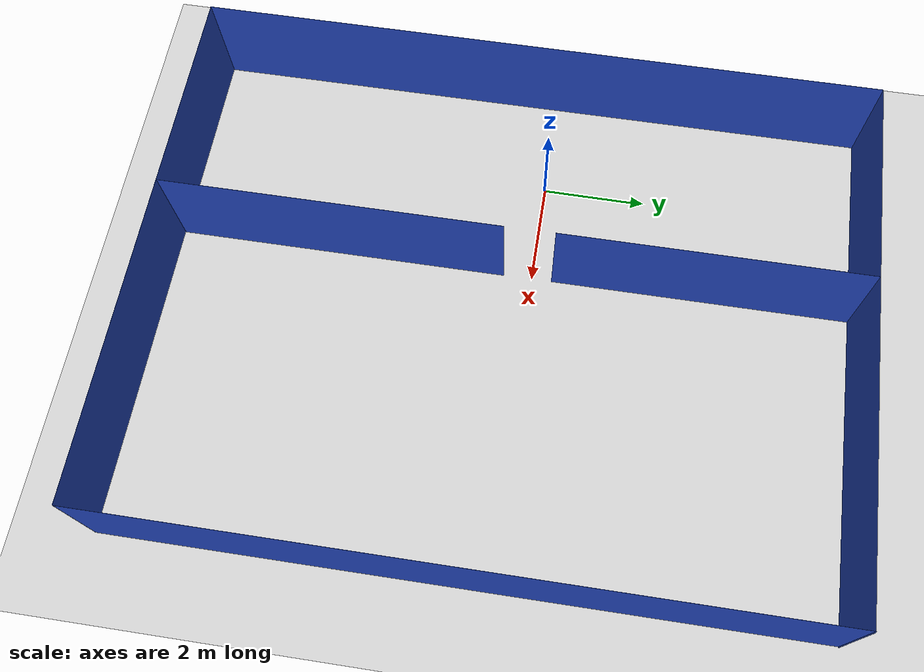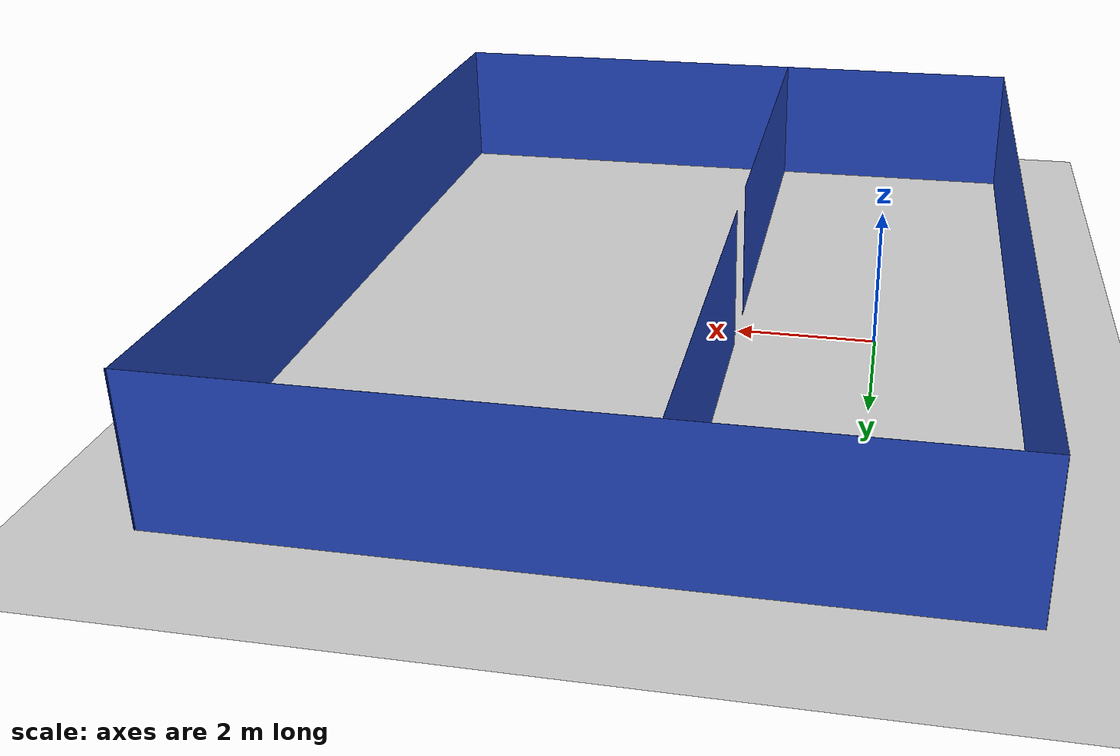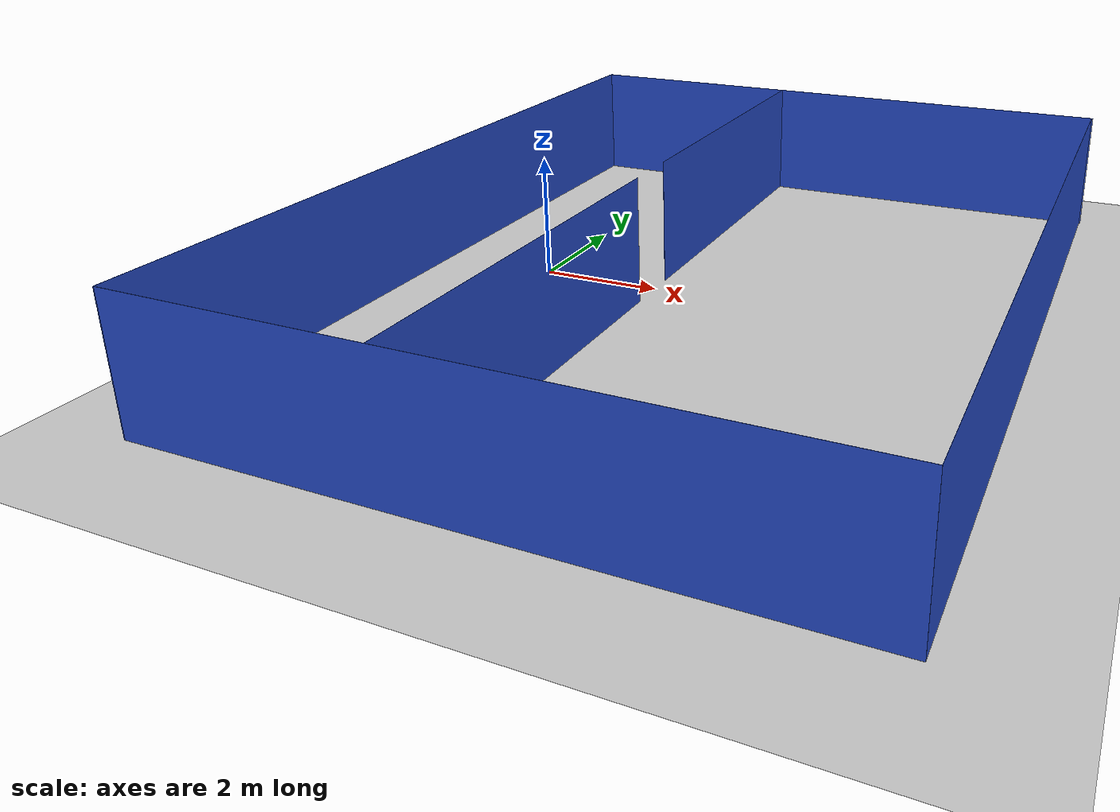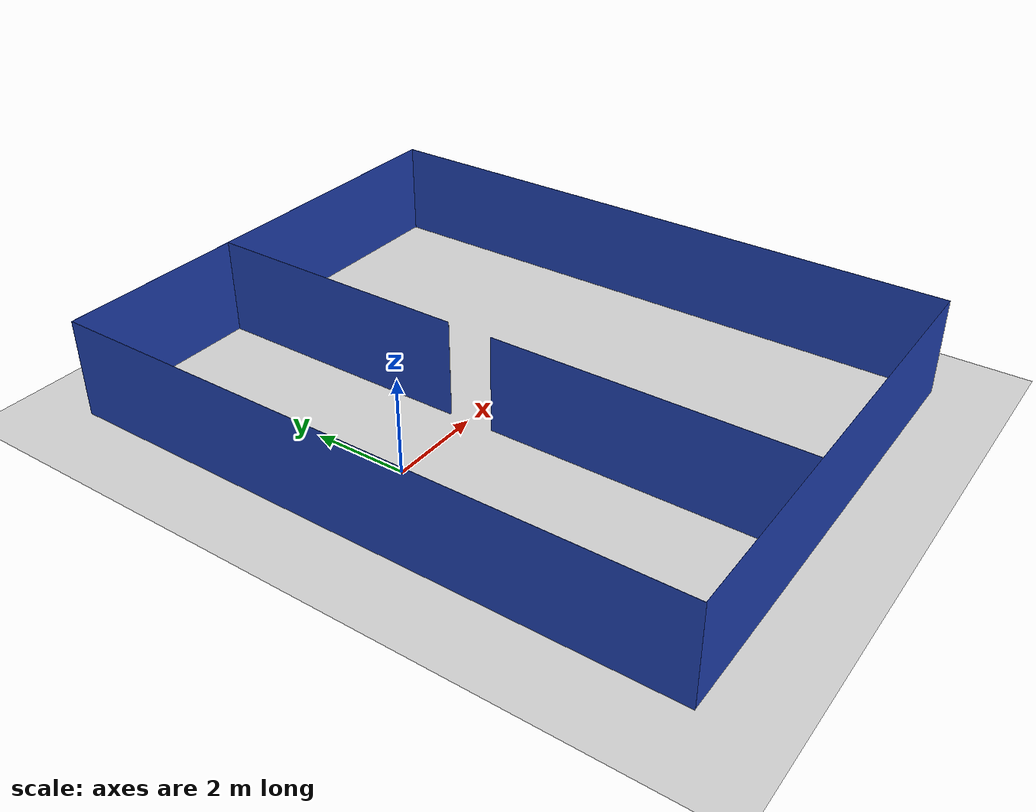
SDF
<sdf version="1.6">
 <world name="default">
  <light name="sun" type="directional">
   <pose>0 0 10 0 -0 0</pose>
   <diffuse>0.8 0.8 0.8 1</diffuse>
   <specular>0.2 0.2 0.2 1</specular>
   <attenuation>
    <range>1000</range>
    <constant>0.9</constant>
    <linear>0.01</linear>
    <quadratic>0.001</quadratic>
   </attenuation>
   <direction>-0.5 0.1 -0.9</direction>
  </light>
  <model name="ground_plane">
   <static>1</static>
   <link name="link">
    <collision name="collision">
     <geometry><plane><normal>0 0 1</normal><size>100 100</size></plane></geometry>
     <surface><friction><ode><mu>100</mu><mu2>50</mu2></ode></friction></surface>
    </collision>
    <visual name="visual">
     <cast_shadows>0</cast_shadows>
     <geometry><plane><normal>0 0 1</normal><size>100 100</size></plane></geometry>
     <material>
      <script><uri>file://media/materials/scripts/gazebo.material</uri><name>Gazebo/Grey</name></script>
     </material>
    </visual>
   </link>
  </model>
  <gravity>0 0 -9.8</gravity>
  <magnetic_field>6e-06 2.3e-05 -4.2e-05</magnetic_field>
  <atmosphere type="adiabatic"/>
  <physics name="default_physics" default="0" type="ode">
   <max_step_size>0.001</max_step_size>
   <real_time_factor>1</real_time_factor>
   <real_time_update_rate>1000</real_time_update_rate>
  </physics>
  <scene><ambient>0.4 0.4 0.4 1</ambient><background>0.7 0.7 0.7 1</background><shadows>1</shadows></scene>
  <audio><device>default</device></audio>
  <spherical_coordinates>
   <surface_model>EARTH_WGS84</surface_model>
   <latitude_deg>0</latitude_deg>
   <longitude_deg>0</longitude_deg>
   <elevation>0</elevation>
   <heading_deg>0</heading_deg>
  </spherical_coordinates>
  <model name="apartment_wall_collision_new_with_collision">
   <link name="link">
    <inertial>
     <mass>50</mass>
     <inertia><ixx>1</ixx><ixy>0</ixy><ixz>0</ixz><iyy>1</iyy><iyz>0</iyz><izz>1</izz></inertia>
    </inertial>
    <velocity_decay><linear>0</linear><angular>0</angular></velocity_decay>
    <visual name="ModelPreview_1::link::visual_6">
     <pose>3.97 10.292 1.04 0 -0 1.57</pose>
     <geometry><box><size>5.78 0.002 2.08</size></box></geometry>
     <material>
      <script>
       <uri>model://base_materials/color/scripts</uri>
       <name>hsr_color/cornflowerblue_transparency1</name>
      </script>
      <shader type="pixel"><normal_map>__default__</normal_map></shader>
      <ambient>0.392 0.584 0.929 1</ambient>
      <diffuse>0.196 0.292 0.465 1</diffuse>
      <specular>0 0 0 1</specular>
      <emissive>0 0 0 1</emissive>
     </material>
    </visual>
    <visual name="ModelPreview_1::link::visual_7">
     <pose>3.97 3.23 1.04 0 -0 1.57</pose>
     <geometry><box><size>6.45 0.002 2.08</size></box></geometry>
     <material>
      <script>
       <uri>model://base_materials/color/scripts</uri>
       <name>hsr_color/cornflowerblue_transparency1</name>
      </script>
      <shader type="pixel"><normal_map>__default__</normal_map></shader>
      <ambient>0.392 0.584 0.929 1</ambient>
      <diffuse>0.196 0.292 0.465 1</diffuse>
      <specular>0 0 0 1</specular>
      <emissive>0 0 0 1</emissive>
     </material>
    </visual>
    <visual name="wall_x00y00_x00y15">
     <pose>-0.002 6.59 1.04 0 -0 0</pose>
     <geometry><box><size>0.002 13.2 2.08</size></box></geometry>
     <material>
      <script>
       <uri>model://base_materials/color/scripts</uri>
       <name>hsr_color/cornflowerblue_transparency1</name>
      </script>
      <shader type="pixel"><normal_map>__default__</normal_map></shader>
      <ambient>0.392 0.584 0.929 1</ambient>
      <diffuse>0.196 0.292 0.465 1</diffuse>
      <specular>0 0 0 1</specular>
      <emissive>0 0 0 1</emissive>
     </material>
    </visual>
    <visual name="wall_x00y00_x13y00">
     <pose>5.0375 -0.002 1.04 0 -0 0</pose>
     <geometry><box><size>10.08 0.002 2.08</size></box></geometry>
     <material>
      <script>
       <uri>model://base_materials/color/scripts</uri>
       <name>hsr_color/cornflowerblue_transparency1</name>
      </script>
      <shader type="pixel"><normal_map>__default__</normal_map></shader>
      <ambient>0.392 0.584 0.929 1</ambient>
      <diffuse>0.196 0.292 0.465 1</diffuse>
      <specular>0 0 0 1</specular>
      <emissive>0 0 0 1</emissive>
     </material>
    </visual>
    <visual name="wall_x13y00_x13y12">
     <pose>10.077 6.6 1.04 0 -0 0</pose>
     <geometry><box><size>0.002 13.2 2.08</size></box></geometry>
     <material>
      <script>
       <uri>model://base_materials/color/scripts</uri>
       <name>hsr_color/cornflowerblue_transparency1</name>
      </script>
      <shader type="pixel"><normal_map>__default__</normal_map></shader>
      <ambient>0.392 0.584 0.929 1</ambient>
      <diffuse>0.196 0.292 0.465 1</diffuse>
      <specular>0 0 0 1</specular>
      <emissive>0 0 0 1</emissive>
     </material>
    </visual>
    <visual name="wall_x03y16_x13y16">
     <pose>5.05 13.182 1.04 0 -0 0</pose>
     <geometry><box><size>10.1 0.002 2.08</size></box></geometry>
     <material>
      <script>
       <uri>model://base_materials/color/scripts</uri>
       <name>hsr_color/cornflowerblue_transparency1</name>
      </script>
      <shader type="pixel"><normal_map>__default__</normal_map></shader>
      <ambient>0.392 0.584 0.929 1</ambient>
      <diffuse>0.196 0.292 0.465 1</diffuse>
      <specular>0 0 0 1</specular>
      <emissive>0 0 0 1</emissive>
     </material>
    </visual>
    <collision name="collision_7">
     <pose>3.97 3.23 1.04 0 -0 1.57</pose>
     <geometry><box><size>6.45 0.002 2.08</size></box></geometry>
     <surface>
      <friction>
       <ode><mu>1</mu><mu2>1</mu2><fdir1>0 0 0</fdir1><slip1>0</slip1><slip2>0</slip2></ode>
       <torsional>
        <coefficient>1</coefficient>
        <patch_radius>0</patch_radius>
        <surface_radius>0</surface_radius>
        <use_patch_radius>1</use_patch_radius>
        <ode><slip>0</slip></ode>
       </torsional>
      </friction>
      <bounce><restitution_coefficient>0</restitution_coefficient><threshold>1e+06</threshold></bounce>
      <contact>
       <collide_without_contact>0</collide_without_contact>
       <collide_without_contact_bitmask>1</collide_without_contact_bitmask>
       <collide_bitmask>1</collide_bitmask>
       <ode>
        <soft_cfm>0</soft_cfm>
        <soft_erp>0.2</soft_erp>
        <kp>1e+13</kp>
        <kd>1</kd>
        <max_vel>0.01</max_vel>
        <min_depth>0</min_depth>
       </ode>
       <bullet>
        <split_impulse>1</split_impulse>
        <split_impulse_penetration_threshold>-0.01</split_impulse_penetration_threshold>
        <soft_cfm>0</soft_cfm>
        <soft_erp>0.2</soft_erp>
        <kp>1e+13</kp>
        <kd>1</kd>
       </bullet>
      </contact>
     </surface>
    </collision>
    <collision name="collision_6">
     <pose>4 10.292 1.04 0 -0 1.57</pose>
     <geometry><box><size>5.78 0.002 2.08</size></box></geometry>
     <surface>
      <friction>
       <ode><mu>1</mu><mu2>1</mu2><fdir1>0 0 0</fdir1><slip1>0</slip1><slip2>0</slip2></ode>
       <torsional>
        <coefficient>1</coefficient>
        <patch_radius>0</patch_radius>
        <surface_radius>0</surface_radius>
        <use_patch_radius>1</use_patch_radius>
        <ode><slip>0</slip></ode>
       </torsional>
      </friction>
      <bounce><restitution_coefficient>0</restitution_coefficient><threshold>1e+06</threshold></bounce>
      <contact>
       <collide_without_contact>0</collide_without_contact>
       <collide_without_contact_bitmask>1</collide_without_contact_bitmask>
       <collide_bitmask>1</collide_bitmask>
       <ode>
        <soft_cfm>0</soft_cfm>
        <soft_erp>0.2</soft_erp>
        <kp>1e+13</kp>
        <kd>1</kd>
        <max_vel>0.01</max_vel>
        <min_depth>0</min_depth>
       </ode>
       <bullet>
        <split_impulse>1</split_impulse>
        <split_impulse_penetration_threshold>-0.01</split_impulse_penetration_threshold>
        <soft_cfm>0</soft_cfm>
        <soft_erp>0.2</soft_erp>
        <kp>1e+13</kp>
        <kd>1</kd>
       </bullet>
      </contact>
     </surface>
    </collision>
    <collision name="wall_x00y00_x00y15">
     <pose>-0.002 6.59 1.04 0 -0 0</pose>
     <geometry><box><size>0.002 13.2 2.08</size></box></geometry>
     <surface>
      <friction>
       <ode><mu>1</mu><mu2>1</mu2><fdir1>0 0 0</fdir1><slip1>0</slip1><slip2>0</slip2></ode>
       <torsional>
        <coefficient>1</coefficient>
        <patch_radius>0</patch_radius>
        <surface_radius>0</surface_radius>
        <use_patch_radius>1</use_patch_radius>
        <ode><slip>0</slip></ode>
       </torsional>
      </friction>
      <bounce><restitution_coefficient>0</restitution_coefficient><threshold>1e+06</threshold></bounce>
      <contact>
       <collide_without_contact>0</collide_without_contact>
       <collide_without_contact_bitmask>1</collide_without_contact_bitmask>
       <collide_bitmask>1</collide_bitmask>
       <ode>
        <soft_cfm>0</soft_cfm>
        <soft_erp>0.2</soft_erp>
        <kp>1e+13</kp>
        <kd>1</kd>
        <max_vel>0.01</max_vel>
        <min_depth>0</min_depth>
       </ode>
       <bullet>
        <split_impulse>1</split_impulse>
        <split_impulse_penetration_threshold>-0.01</split_impulse_penetration_threshold>
        <soft_cfm>0</soft_cfm>
        <soft_erp>0.2</soft_erp>
        <kp>1e+13</kp>
        <kd>1</kd>
       </bullet>
      </contact>
     </surface>
    </collision>
    <collision name="wall_x00y00_x13y00">
     <pose>5.0375 -0.002 1.04 0 -0 0</pose>
     <geometry><box><size>10.08 0.002 2.08</size></box></geometry>
     <surface>
      <friction>
       <ode><mu>1</mu><mu2>1</mu2><fdir1>0 0 0</fdir1><slip1>0</slip1><slip2>0</slip2></ode>
       <torsional>
        <coefficient>1</coefficient>
        <patch_radius>0</patch_radius>
        <surface_radius>0</surface_radius>
        <use_patch_radius>1</use_patch_radius>
        <ode><slip>0</slip></ode>
       </torsional>
      </friction>
      <bounce><restitution_coefficient>0</restitution_coefficient><threshold>1e+06</threshold></bounce>
      <contact>
       <collide_without_contact>0</collide_without_contact>
       <collide_without_contact_bitmask>1</collide_without_contact_bitmask>
       <collide_bitmask>1</collide_bitmask>
       <ode>
        <soft_cfm>0</soft_cfm>
        <soft_erp>0.2</soft_erp>
        <kp>1e+13</kp>
        <kd>1</kd>
        <max_vel>0.01</max_vel>
        <min_depth>0</min_depth>
       </ode>
       <bullet>
        <split_impulse>1</split_impulse>
        <split_impulse_penetration_threshold>-0.01</split_impulse_penetration_threshold>
        <soft_cfm>0</soft_cfm>
        <soft_erp>0.2</soft_erp>
        <kp>1e+13</kp>
        <kd>1</kd>
       </bullet>
      </contact>
     </surface>
    </collision>
    <collision name="wall_x13y00_x13y12">
     <pose>10.077 6.6 1.04 0 -0 0</pose>
     <geometry><box><size>0.002 13.2 2.08</size></box></geometry>
     <surface>
      <friction>
       <ode><mu>1</mu><mu2>1</mu2><fdir1>0 0 0</fdir1><slip1>0</slip1><slip2>0</slip2></ode>
       <torsional>
        <coefficient>1</coefficient>
        <patch_radius>0</patch_radius>
        <surface_radius>0</surface_radius>
        <use_patch_radius>1</use_patch_radius>
        <ode><slip>0</slip></ode>
       </torsional>
      </friction>
      <bounce><restitution_coefficient>0</restitution_coefficient><threshold>1e+06</threshold></bounce>
      <contact>
       <collide_without_contact>0</collide_without_contact>
       <collide_without_contact_bitmask>1</collide_without_contact_bitmask>
       <collide_bitmask>1</collide_bitmask>
       <ode>
        <soft_cfm>0</soft_cfm>
        <soft_erp>0.2</soft_erp>
        <kp>1e+13</kp>
        <kd>1</kd>
        <max_vel>0.01</max_vel>
        <min_depth>0</min_depth>
       </ode>
       <bullet>
        <split_impulse>1</split_impulse>
        <split_impulse_penetration_threshold>-0.01</split_impulse_penetration_threshold>
        <soft_cfm>0</soft_cfm>
        <soft_erp>0.2</soft_erp>
        <kp>1e+13</kp>
        <kd>1</kd>
       </bullet>
      </contact>
     </surface>
    </collision>
    <collision name="wall_x03y16_x13y16">
     <pose>5.05 13.182 1.04 0 -0 0</pose>
     <geometry><box><size>10.1 0.002 2.08</size></box></geometry>
     <surface>
      <friction>
       <ode><mu>1</mu><mu2>1</mu2><fdir1>0 0 0</fdir1><slip1>0</slip1><slip2>0</slip2></ode>
       <torsional>
        <coefficient>1</coefficient>
        <patch_radius>0</patch_radius>
        <surface_radius>0</surface_radius>
        <use_patch_radius>1</use_patch_radius>
        <ode><slip>0</slip></ode>
       </torsional>
      </friction>
      <bounce><restitution_coefficient>0</restitution_coefficient><threshold>1e+06</threshold></bounce>
      <contact>
       <collide_without_contact>0</collide_without_contact>
       <collide_without_contact_bitmask>1</collide_without_contact_bitmask>
       <collide_bitmask>1</collide_bitmask>
       <ode>
        <soft_cfm>0</soft_cfm>
        <soft_erp>0.2</soft_erp>
        <kp>1e+13</kp>
        <kd>1</kd>
        <max_vel>0.01</max_vel>
        <min_depth>0</min_depth>
       </ode>
       <bullet>
        <split_impulse>1</split_impulse>
        <split_impulse_penetration_threshold>-0.01</split_impulse_penetration_threshold>
        <soft_cfm>0</soft_cfm>
        <soft_erp>0.2</soft_erp>
        <kp>1e+13</kp>
        <kd>1</kd>
       </bullet>
      </contact>
     </surface>
    </collision>
   </link>
   <static>1</static>
   <pose>-1.97119 -7.01134 0 0 -0 0</pose>
  </model>
 </world>
</sdf>
